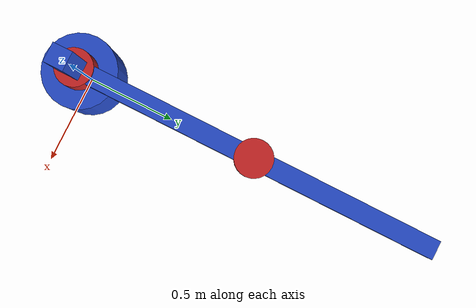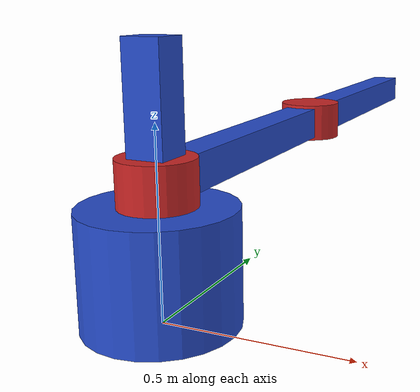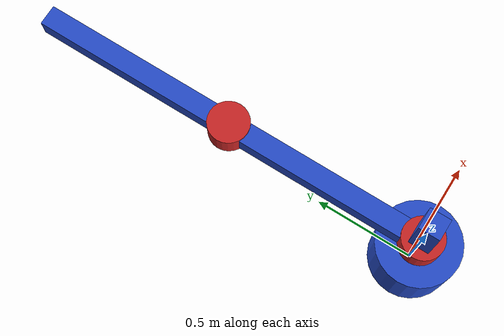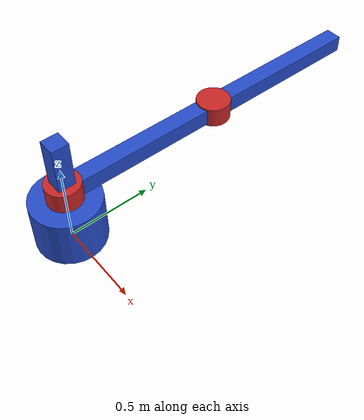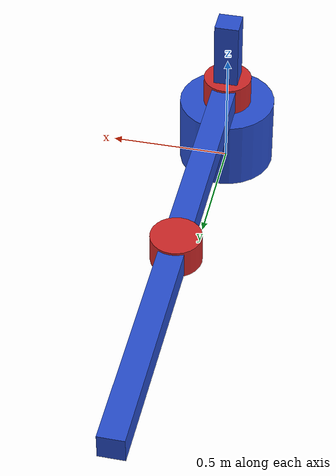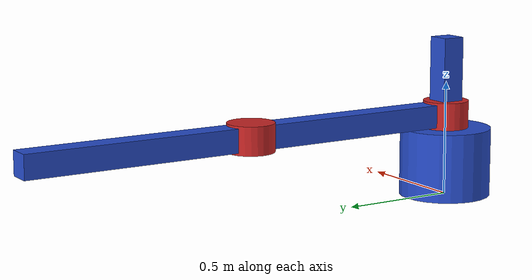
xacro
<?xml version="1.0"?>
<robot name="scara_robot" xmlns:xacro="http://www.ros.org/wiki/xacro">

    <!-- Constants for robot dimensions -->
    <xacro:property name="PI" value="3.1415926535897931"/>
    <xacro:property name="mass" value="1" /> <!-- arbitrary value for mass -->
    <xacro:property name="width" value="0.1" /> <!-- Square dimensions (widthxwidth) of beams -->
    <xacro:property name="radius0" value="0.2" /> <!-- Base radius -->
    <xacro:property name="height0" value="0.3" /> <!-- Base height -->
    <xacro:property name="a0" value="0.2" /> <!-- Link 1 Vertical -->
    <xacro:property name="a1" value="1" /> <!-- Link 1 Horizontal -->
    <xacro:property name="height1" value="0.12" /> <!-- Cylinder Height-->
    <xacro:property name="a2" value="1" /> <!-- Link 2 -->
    <xacro:property name="a3" value="1" /> <!-- Link 3 -->
    <xacro:property name="radius1" value="0.1" /> <!-- Radius of Joint Cylinder -->

    <xacro:include filename="gazebo_specifics.xacro"/>

    <link name="world"/>

    <joint name="fixed1" type="fixed">
        <parent link="world"/>
        <child link="base_link"/>
        <origin xyz="0 0 0" rpy="0 0 0"/>
    </joint>

    <!-- Base Link -->
    <link name="base_link">
        <collision>
            <origin xyz="0 0 ${height0/2}" rpy="0 0 0"/>
            <geometry>
                <cylinder length = "${height0}" radius = "${radius0}"/>
            </geometry>
        </collision>
        <visual>
            <origin xyz="0 0 ${height0/2}" rpy="0 0 0"/>
            <geometry>
                <cylinder length = "${height0}" radius = "${radius0}"/>
            </geometry>
        </visual>
        <inertial>
            <origin xyz="0 0 ${height0/2}" rpy="0 0 0"/>
            <mass value="10"/>
            <inertia ixx="0.31" ixy="0.0" ixz="0.0" iyy="0.31" iyz="0.0" izz="0.2"/>
        </inertial>
    </link>

    <joint name="fixed0" type="fixed">
        <parent link="base_link"/>
        <child link="link1"/>
        <origin xyz="0 0 ${height0}" rpy="0 0 0"/>
    </joint>

    <link name="link1">
        <collision>
            <origin xyz="0 0 ${a0}" rpy="0 0 0"/>
            <geometry>
                <box size="${width} ${width} ${a0*2}"/>
            </geometry>
        </collision>

        <visual>
            <origin xyz="0 0 ${a0}" rpy="0 0 0"/>
            <geometry>
                <box size="${width} ${width} ${a0*2}"/>
            </geometry>
        </visual>

        <inertial>
            <origin xyz="0 0 ${a0}" rpy="0 0 0"/>
            <mass value="${mass}"/>
            <inertia
                ixx="${mass / 12.0 * (width*width + a0*a0*16)}" ixy="0.0" ixz="0.0"
                iyy="${mass / 12.0 * (width*width + width*width)}" iyz="0.0"
                izz="${mass / 12.0 * (width*width + a0*a0*16)}"/>
        </inertial>
    </link>

    <joint name="joint0" type="prismatic">
        <parent link="link1"/>
        <child link="cyl0"/>
        <origin xyz="0 0 0" rpy="0 0 0"/>
        <axis xyz="0 0 1"/>
        <dynamics damping="0.7"/>
        <limit lower="0.0" upper="${a0*2}" effort="10" velocity="2"/>
    </joint>

    <link name="cyl0">
        <collision>
            <origin xyz="0 0 ${height1/2}" rpy="0 0 0"/>
            <geometry>
                <cylinder length = "${height1}" radius = "${radius1}"/>
            </geometry>
        </collision>
        <visual>
            <origin xyz="0 0 ${height1/2}" rpy="0 0 0"/>
            <geometry>
                <cylinder length = "${height1}" radius = "${radius1}"/>
            </geometry>
        </visual>
        <inertial>
            <origin xyz="0 0 ${height1/2}" rpy="0 0 0"/>
            <mass value="2"/>
            <inertia ixx="0.31" ixy="0.0" ixz="0.0" iyy="0.31" iyz="0.0" izz="0.2"/>
        </inertial>
        <self_collide>true</self_collide>
    </link>

    <joint name="joint1" type="continuous">
        <parent link="cyl0"/>
        <child link="link1_h"/>
        <origin xyz="0 0 ${height1/2}" rpy="0 0 0"/>
        <axis xyz="0 0 1"/>
        <dynamics damping="0.7"/>
        <limit lower="${-pi/2}" upper="${pi/2}" effort="1000" velocity="2"/>
    </joint>

    <link name="link1_h">
        <collision>
            <origin xyz="0 ${a1/2} 0" rpy="1.57 0 0"/>
            <geometry>
                <box size="${width} ${width} ${a1}"/>
            </geometry>
        </collision>

        <visual>
            <origin xyz="0 ${a1/2} 0" rpy="1.57 0 0"/>
            <geometry>
                <box size="${width} ${width} ${a1}"/>
            </geometry>
        </visual>

        <inertial>
            <origin xyz="0 ${a1/2} 0" rpy="1.57 0 0"/>
            <mass value="${mass}"/>
            <inertia
                ixx="${mass / 12.0 * (width*width + a1*a1)}" ixy="0.0" ixz="0.0"
                iyy="${mass / 12.0 * (width*width + width*width)}" iyz="0.0"
                izz="${mass / 12.0 * (width*width + a1*a1)}"/>
        </inertial>
    </link>

    <joint name="cyl_joint1" type="fixed">
        <parent link="link1_h"/>
        <child link="cyl1"/>
        <origin xyz="0 ${a1} 0" rpy="0 0 0"/>
    </joint>

    <!-- Base Link -->
    <link name="cyl1">
        <collision>
            <origin xyz="0 0 0" rpy="0 0 0"/>
            <geometry>
                <cylinder length = "${height1}" radius = "${radius1}"/>
            </geometry>
        </collision>
        <visual>
            <origin xyz="0 0 0" rpy="0 0 0"/>
            <geometry>
                <cylinder length = "${height1}" radius = "${radius1}"/>
            </geometry>
        </visual>
        <inertial>
            <origin xyz="0 0 0" rpy="0 0 0"/>
            <mass value="2"/>
            <inertia ixx="0.31" ixy="0.0" ixz="0.0" iyy="0.31" iyz="0.0" izz="0.2"/>
        </inertial>
    </link>

    <joint name="joint2" type="continuous">
        <parent link="cyl1"/>
        <child link="link2"/>
        <origin xyz="0 0 0" rpy="0 0 0"/>
        <axis xyz="0 0 1"/>
        <dynamics damping="0.7"/>
        <limit effort="1000" velocity="2"/>
        <limit lower="${-pi/2}" upper="${pi/2}" effort="1000" velocity="2"/>
    </joint>

    <link name="link2">
        <collision>
            <origin xyz="0 ${a2/2} 0" rpy="1.57 0 0"/>
            <geometry>
                <box size="${width} ${width} ${a2}"/>
            </geometry>
        </collision>

        <visual>
            <origin xyz="0 ${a2/2} 0" rpy="1.57 0 0"/>
            <geometry>
                <box size="${width} ${width} ${a2}"/>
            </geometry>
        </visual>

        <inertial>
            <origin xyz="0 ${a2/2} 0" rpy="1.57 0 0"/>
            <mass value="${mass}"/>
            <inertia
                ixx="${mass / 12.0 * (width*width + a2*a2)}" ixy="0.0" ixz="0.0"
                iyy="${mass / 12.0 * (width*width + width*width)}" iyz="0.0"
                izz="${mass / 12.0 * (width*width + a2*a2)}"/>
        </inertial>
    </link>

    <transmission name="tran1">
        <type>transmission_interface/SimpleTransmission</type>
        <joint name="joint0">
            <hardwareInterface>hardware_interface/EffortJointInterface</hardwareInterface>
        </joint>
        <actuator name="motor0">
            <hardwareInterface>hardware_interface/EffortJointInterface</hardwareInterface>
            <mechanicalReduction>1</mechanicalReduction>
        </actuator>
    </transmission>

    <transmission name="tran2">
        <type>transmission_interface/SimpleTransmission</type>
        <joint name="joint1">
            <hardwareInterface>hardware_interface/EffortJointInterface</hardwareInterface>
        </joint>
        <actuator name="motor1">
            <hardwareInterface>hardware_interface/EffortJointInterface</hardwareInterface>
            <mechanicalReduction>1</mechanicalReduction>
        </actuator>
    </transmission>

    <transmission name="tran3">
        <type>transmission_interface/SimpleTransmission</type>
        <joint name="joint2">
            <hardwareInterface>hardware_interface/EffortJointInterface</hardwareInterface>
        </joint>
        <actuator name="motor2">
            <hardwareInterface>hardware_interface/EffortJointInterface</hardwareInterface>
            <mechanicalReduction>1</mechanicalReduction>
        </actuator>
    </transmission>

</robot>
